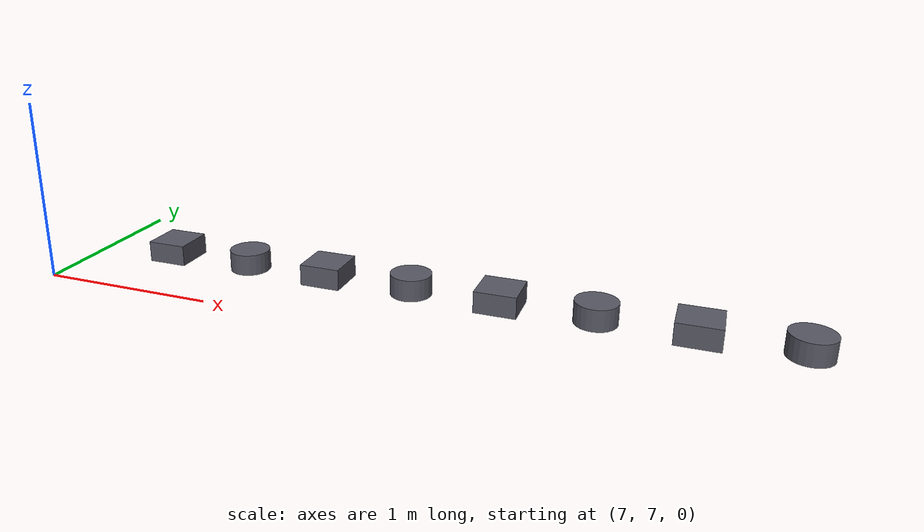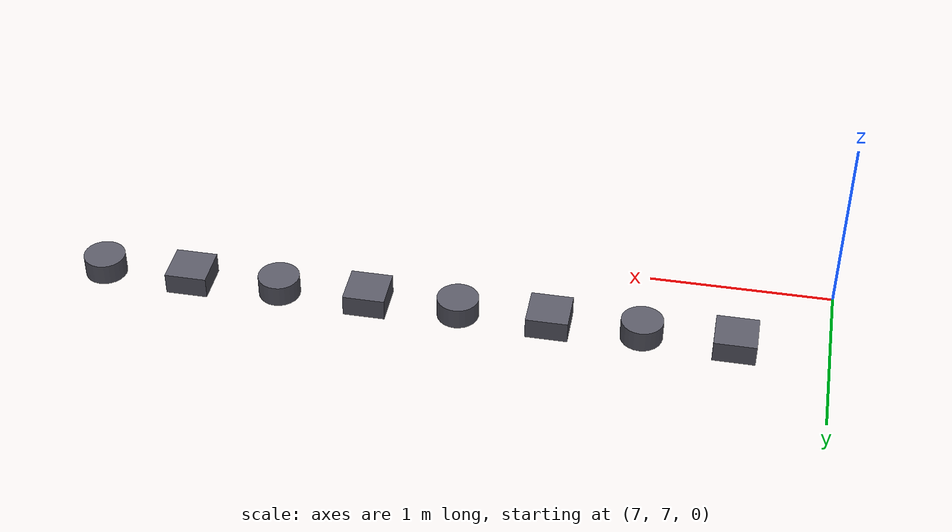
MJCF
<mujoco model="arena_5x5">
  <worldbody>
    <body name="obstacle_0" mocap="true" pos="7.5 7.5 0.06">
      <geom name="obstacle_0" type="box" group="2" size="0.11499999999999999 0.11499999999999999 0.06" contype="3" conaffinity="3" rgba="0.35 0.35 0.4 1"/>
    </body>
    <body name="obstacle_1" mocap="true" pos="8.0 7.5 0.06">
      <geom name="obstacle_1" type="cylinder" group="2" size="0.11499999999999999 0.06" contype="3" conaffinity="3" rgba="0.35 0.35 0.4 1"/>
    </body>
    <body name="obstacle_2" mocap="true" pos="8.5 7.5 0.06">
      <geom name="obstacle_2" type="box" group="2" size="0.11499999999999999 0.11499999999999999 0.06" contype="3" conaffinity="3" rgba="0.35 0.35 0.4 1"/>
    </body>
    <body name="obstacle_3" mocap="true" pos="9.0 7.5 0.06">
      <geom name="obstacle_3" type="cylinder" group="2" size="0.11499999999999999 0.06" contype="3" conaffinity="3" rgba="0.35 0.35 0.4 1"/>
    </body>
    <body name="obstacle_4" mocap="true" pos="9.5 7.5 0.06">
      <geom name="obstacle_4" type="box" group="2" size="0.11499999999999999 0.11499999999999999 0.06" contype="3" conaffinity="3" rgba="0.35 0.35 0.4 1"/>
    </body>
    <body name="obstacle_5" mocap="true" pos="10.0 7.5 0.06">
      <geom name="obstacle_5" type="cylinder" group="2" size="0.11499999999999999 0.06" contype="3" conaffinity="3" rgba="0.35 0.35 0.4 1"/>
    </body>
    <body name="obstacle_6" mocap="true" pos="10.5 7.5 0.06">
      <geom name="obstacle_6" type="box" group="2" size="0.11499999999999999 0.11499999999999999 0.06" contype="3" conaffinity="3" rgba="0.35 0.35 0.4 1"/>
    </body>
    <body name="obstacle_7" mocap="true" pos="11.0 7.5 0.06">
      <geom name="obstacle_7" type="cylinder" group="2" size="0.11499999999999999 0.06" contype="3" conaffinity="3" rgba="0.35 0.35 0.4 1"/>
    </body>
  </worldbody>
</mujoco>
